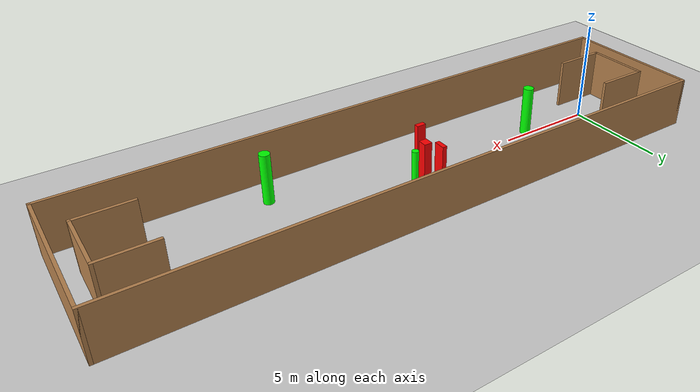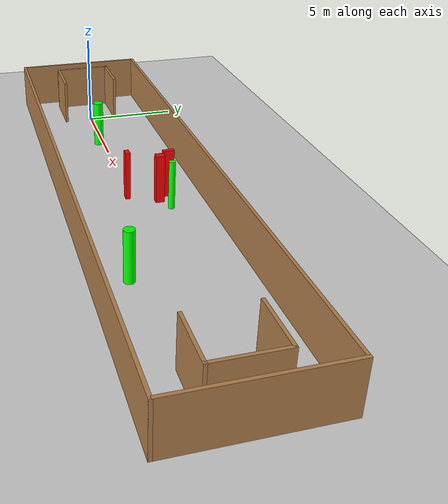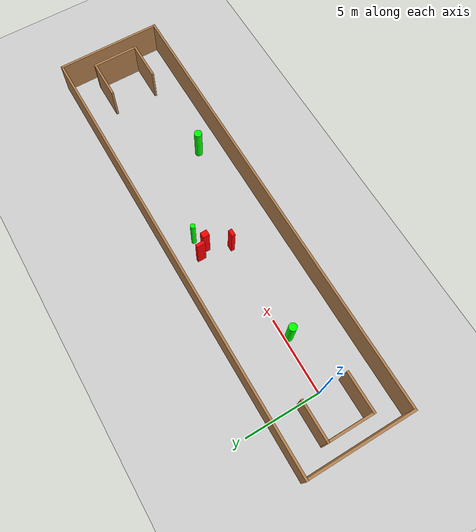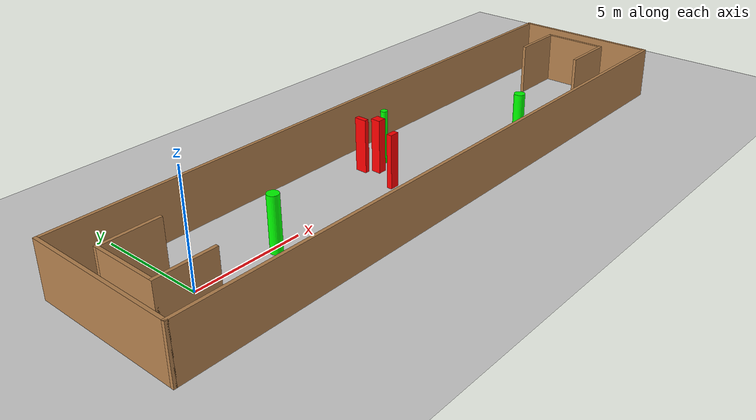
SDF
<sdf version="1.7">
 <world name="default">
  <light name="sun" type="directional">
   <pose>0 0 10 0 -0 0</pose>
   <diffuse>0.8 0.8 0.8 1</diffuse>
   <specular>0.2 0.2 0.2 1</specular>
   <attenuation>
    <range>1000</range>
    <constant>0.9</constant>
    <linear>0.01</linear>
    <quadratic>0.001</quadratic>
   </attenuation>
   <direction>-0.5 0.1 -0.9</direction>
   <spot><inner_angle>0</inner_angle><outer_angle>0</outer_angle><falloff>0</falloff></spot>
  </light>
  <model name="ground_plane">
   <static>1</static>
   <link name="link">
    <collision name="collision">
     <geometry><plane><normal>0 0 1</normal><size>100 100</size></plane></geometry>
     <surface>
      <contact><collide_bitmask>65535</collide_bitmask></contact>
      <friction><ode><mu>100</mu><mu2>50</mu2></ode></friction>
     </surface>
    </collision>
    <visual name="visual">
     <cast_shadows>0</cast_shadows>
     <geometry><plane><normal>0 0 1</normal><size>100 100</size></plane></geometry>
     <material>
      <script><uri>file://media/materials/scripts/gazebo.material</uri><name>Gazebo/Grey</name></script>
     </material>
    </visual>
   </link>
  </model>
  <gravity>0 0 -9.8</gravity>
  <magnetic_field>6e-06 2.3e-05 -4.2e-05</magnetic_field>
  <atmosphere type="adiabatic"/>
  <physics type="ode">
   <max_step_size>0.001</max_step_size>
   <real_time_factor>1</real_time_factor>
   <real_time_update_rate>1000</real_time_update_rate>
  </physics>
  <scene><ambient>0.4 0.4 0.4 1</ambient><background>0.7 0.7 0.7 1</background><shadows>1</shadows></scene>
  <spherical_coordinates>
   <surface_model>EARTH_WGS84</surface_model>
   <latitude_deg>0</latitude_deg>
   <longitude_deg>0</longitude_deg>
   <elevation>0</elevation>
   <heading_deg>0</heading_deg>
  </spherical_coordinates>
  <model name="my_base_walls">
   <link name="Wall_0">
    <collision name="Wall_0_Collision">
     <geometry><box><size>7.15 0.15 2.5</size></box></geometry>
     <pose>0 0 1.25 0 -0 0</pose>
    </collision>
    <visual name="Wall_0_Visual">
     <pose>0 0 1.25 0 -0 0</pose>
     <geometry><box><size>7.15 0.15 2.5</size></box></geometry>
     <material>
      <script><uri>file://media/materials/scripts/gazebo.material</uri><name>Gazebo/Wood</name></script>
      <ambient>1 1 1 1</ambient>
     </material>
     <meta><layer>0</layer></meta>
    </visual>
    <pose>-15 0 0 0 -0 1.5708</pose>
   </link>
   <link name="Wall_10">
    <collision name="Wall_10_Collision">
     <geometry><box><size>2.65 0.15 2.5</size></box></geometry>
     <pose>0 0 1.25 0 -0 0</pose>
    </collision>
    <visual name="Wall_10_Visual">
     <pose>0 0 1.25 0 -0 0</pose>
     <geometry><box><size>2.65 0.15 2.5</size></box></geometry>
     <material>
      <script><uri>file://media/materials/scripts/gazebo.material</uri><name>Gazebo/Wood</name></script>
      <ambient>1 1 1 1</ambient>
     </material>
     <meta><layer>0</layer></meta>
    </visual>
    <pose>-12.75 -1.5 0 0 -0 0</pose>
   </link>
   <link name="Wall_12">
    <collision name="Wall_12_Collision">
     <geometry><box><size>2.65 0.15 2.5</size></box></geometry>
     <pose>0 0 1.25 0 -0 0</pose>
    </collision>
    <visual name="Wall_12_Visual">
     <pose>0 0 1.25 0 -0 0</pose>
     <geometry><box><size>2.65 0.15 2.5</size></box></geometry>
     <material>
      <script><uri>file://media/materials/scripts/gazebo.material</uri><name>Gazebo/Wood</name></script>
      <ambient>1 1 1 1</ambient>
     </material>
     <meta><layer>0</layer></meta>
    </visual>
    <pose>-12.75 1.5 0 0 -0 0</pose>
   </link>
   <link name="Wall_14">
    <collision name="Wall_14_Collision">
     <geometry><box><size>3.15 0.15 2.5</size></box></geometry>
     <pose>0 0 1.25 0 -0 0</pose>
    </collision>
    <visual name="Wall_14_Visual">
     <pose>0 0 1.25 0 -0 0</pose>
     <geometry><box><size>3.15 0.15 2.5</size></box></geometry>
     <material>
      <script><uri>file://media/materials/scripts/gazebo.material</uri><name>Gazebo/Wood</name></script>
      <ambient>1 1 1 1</ambient>
     </material>
     <meta><layer>0</layer></meta>
    </visual>
    <pose>14 0 0 0 -0 -1.5708</pose>
   </link>
   <link name="Wall_15">
    <collision name="Wall_15_Collision">
     <geometry><box><size>2.65 0.15 2.5</size></box></geometry>
     <pose>0 0 1.25 0 -0 0</pose>
    </collision>
    <visual name="Wall_15_Visual">
     <pose>0 0 1.25 0 -0 0</pose>
     <geometry><box><size>2.65 0.15 2.5</size></box></geometry>
     <material>
      <script><uri>file://media/materials/scripts/gazebo.material</uri><name>Gazebo/Wood</name></script>
      <ambient>1 1 1 1</ambient>
     </material>
     <meta><layer>0</layer></meta>
    </visual>
    <pose>12.75 -1.5 0 0 -0 3.14159</pose>
   </link>
   <link name="Wall_17">
    <collision name="Wall_17_Collision">
     <geometry><box><size>2.65 0.15 2.5</size></box></geometry>
     <pose>0 0 1.25 0 -0 0</pose>
    </collision>
    <visual name="Wall_17_Visual">
     <pose>0 0 1.25 0 -0 0</pose>
     <geometry><box><size>2.65 0.15 2.5</size></box></geometry>
     <material>
      <script><uri>file://media/materials/scripts/gazebo.material</uri><name>Gazebo/Wood</name></script>
      <ambient>1 1 1 1</ambient>
     </material>
     <meta><layer>0</layer></meta>
    </visual>
    <pose>12.75 1.5 0 0 -0 3.14159</pose>
   </link>
   <link name="Wall_2">
    <collision name="Wall_2_Collision">
     <geometry><box><size>30.15 0.15 2.5</size></box></geometry>
     <pose>0 0 1.25 0 -0 0</pose>
    </collision>
    <visual name="Wall_2_Visual">
     <pose>0 0 1.25 0 -0 0</pose>
     <geometry><box><size>30.15 0.15 2.5</size></box></geometry>
     <material>
      <script><uri>file://media/materials/scripts/gazebo.material</uri><name>Gazebo/Wood</name></script>
      <ambient>1 1 1 1</ambient>
     </material>
     <meta><layer>0</layer></meta>
    </visual>
    <pose>-0 -3.5 0 0 -0 0</pose>
   </link>
   <link name="Wall_4">
    <collision name="Wall_4_Collision">
     <geometry><box><size>30.15 0.15 2.5</size></box></geometry>
     <pose>0 0 1.25 0 -0 0</pose>
    </collision>
    <visual name="Wall_4_Visual">
     <pose>0 0 1.25 0 -0 0</pose>
     <geometry><box><size>30.15 0.15 2.5</size></box></geometry>
     <material>
      <script><uri>file://media/materials/scripts/gazebo.material</uri><name>Gazebo/Wood</name></script>
      <ambient>1 1 1 1</ambient>
     </material>
     <meta><layer>0</layer></meta>
    </visual>
    <pose>-0 3.5 0 0 -0 0</pose>
   </link>
   <link name="Wall_6">
    <collision name="Wall_6_Collision">
     <geometry><box><size>7.15 0.15 2.5</size></box></geometry>
     <pose>0 0 1.25 0 -0 0</pose>
    </collision>
    <visual name="Wall_6_Visual">
     <pose>0 0 1.25 0 -0 0</pose>
     <geometry><box><size>7.15 0.15 2.5</size></box></geometry>
     <material>
      <script><uri>file://media/materials/scripts/gazebo.material</uri><name>Gazebo/Wood</name></script>
      <ambient>1 1 1 1</ambient>
     </material>
     <meta><layer>0</layer></meta>
    </visual>
    <pose>15 0 0 0 -0 -1.5708</pose>
   </link>
   <link name="Wall_9">
    <collision name="Wall_9_Collision">
     <geometry><box><size>3.15 0.15 2.5</size></box></geometry>
     <pose>0 0 1.25 0 -0 0</pose>
    </collision>
    <visual name="Wall_9_Visual">
     <pose>0 0 1.25 0 -0 0</pose>
     <geometry><box><size>3.15 0.15 2.5</size></box></geometry>
     <material>
      <script><uri>file://media/materials/scripts/gazebo.material</uri><name>Gazebo/Wood</name></script>
      <ambient>1 1 1 1</ambient>
     </material>
     <meta><layer>0</layer></meta>
    </visual>
    <pose>-14 0 0 0 -0 -1.5708</pose>
   </link>
   <static>1</static>
   <pose>11.5 0 0 0 -0 0</pose>
  </model>
  <model name="cylinder1">
   <static>1</static>
   <link name="link">
    <inertial>
     <mass>1</mass>
     <inertia><ixx>0.5</ixx><ixy>0</ixy><ixz>0</ixz><iyy>0.5</iyy><iyz>0</iyz><izz>1</izz></inertia>
    </inertial>
    <collision name="collision">
     <geometry><cylinder><radius>0.26065809392479394</radius><length>2.5</length></cylinder></geometry>
    </collision>
    <visual name="visual">
     <geometry><cylinder><radius>0.26065809392479394</radius><length>2.5</length></cylinder></geometry>
     <material>
      <ambient>0 1 0 1</ambient>
      <diffuse>0 1 0 1</diffuse>
      <specular>0.1 0.1 0.1 1</specular>
      <emissive>0 0 0 0</emissive>
     </material>
    </visual>
   </link>
   <pose>3.6556493434728807 -0.2513632791598792 1.25 0 0 0</pose>
  </model>
  <model name="cylinder2">
   <static>1</static>
   <link name="link">
    <inertial>
     <mass>1</mass>
     <inertia><ixx>0.5</ixx><ixy>0</ixy><ixz>0</ixz><iyy>0.5</iyy><iyz>0</iyz><izz>1</izz></inertia>
    </inertial>
    <collision name="collision">
     <geometry><cylinder><radius>0.1586605560229533</radius><length>2.5</length></cylinder></geometry>
    </collision>
    <visual name="visual">
     <geometry><cylinder><radius>0.1586605560229533</radius><length>2.5</length></cylinder></geometry>
     <material>
      <ambient>0 1 0 1</ambient>
      <diffuse>0 1 0 1</diffuse>
      <specular>0.1 0.1 0.1 1</specular>
      <emissive>0 0 0 0</emissive>
     </material>
    </visual>
   </link>
   <pose>11.923018432427188 1.6103977716565456 1.25 0 0 0</pose>
  </model>
  <model name="cylinder3">
   <static>1</static>
   <link name="link">
    <inertial>
     <mass>1</mass>
     <inertia><ixx>0.5</ixx><ixy>0</ixy><ixz>0</ixz><iyy>0.5</iyy><iyz>0</iyz><izz>1</izz></inertia>
    </inertial>
    <collision name="collision">
     <geometry><cylinder><radius>0.2559791996299907</radius><length>2.5</length></cylinder></geometry>
    </collision>
    <visual name="visual">
     <geometry><cylinder><radius>0.2559791996299907</radius><length>2.5</length></cylinder></geometry>
     <material>
      <ambient>0 1 0 1</ambient>
      <diffuse>0 1 0 1</diffuse>
      <specular>0.1 0.1 0.1 1</specular>
      <emissive>0 0 0 0</emissive>
     </material>
    </visual>
   </link>
   <pose>17.394127308337726 -1.8531126029629252 1.25 0 0 0</pose>
  </model>
  <model name="box1">
   <static>1</static>
   <link name="link">
    <inertial>
     <mass>1</mass>
     <inertia><ixx>0.083</ixx><ixy>0</ixy><ixz>0</ixz><iyy>0.083</iyy><iyz>0</iyz><izz>0.083</izz></inertia>
    </inertial>
    <collision name="collision">
     <geometry><box><size>0.3879251791719624 0.43691144477222754 2.5</size></box></geometry>
    </collision>
    <visual name="visual">
     <geometry><box><size>0.3879251791719624 0.43691144477222754 2.5</size></box></geometry>
     <material>
      <ambient>1 0 0 1</ambient>
      <diffuse>1 0 0 1</diffuse>
      <specular>0.1 0.1 0.1 1</specular>
      <emissive>0 0 0 0</emissive>
     </material>
    </visual>
    <sensor name="my_contact" type="contact">
     <contact><collision>box_collision</collision><topic>__default_topic__</topic></contact>
    </sensor>
   </link>
   <pose>11.105777239632154 1.2291391560072071 1.25 0 0 0</pose>
  </model>
  <model name="box2">
   <static>1</static>
   <link name="link">
    <inertial>
     <mass>1</mass>
     <inertia><ixx>0.083</ixx><ixy>0</ixy><ixz>0</ixz><iyy>0.083</iyy><iyz>0</iyz><izz>0.083</izz></inertia>
    </inertial>
    <collision name="collision">
     <geometry><box><size>0.21745833201852904 0.5627156735170536 2.5</size></box></geometry>
    </collision>
    <visual name="visual">
     <geometry><box><size>0.21745833201852904 0.5627156735170536 2.5</size></box></geometry>
     <material>
      <ambient>1 0 0 1</ambient>
      <diffuse>1 0 0 1</diffuse>
      <specular>0.1 0.1 0.1 1</specular>
      <emissive>0 0 0 0</emissive>
     </material>
    </visual>
    <sensor name="my_contact" type="contact">
     <contact><collision>box_collision</collision><topic>__default_topic__</topic></contact>
    </sensor>
   </link>
   <pose>10.67046523313705 1.7831585378569264 1.25 0 0 0</pose>
  </model>
  <model name="box3">
   <static>1</static>
   <link name="link">
    <inertial>
     <mass>1</mass>
     <inertia><ixx>0.083</ixx><ixy>0</ixy><ixz>0</ixz><iyy>0.083</iyy><iyz>0</iyz><izz>0.083</izz></inertia>
    </inertial>
    <collision name="collision">
     <geometry><box><size>0.4421205447478431 0.24124303969506927 2.5</size></box></geometry>
    </collision>
    <visual name="visual">
     <geometry><box><size>0.4421205447478431 0.24124303969506927 2.5</size></box></geometry>
     <material>
      <ambient>1 0 0 1</ambient>
      <diffuse>1 0 0 1</diffuse>
      <specular>0.1 0.1 0.1 1</specular>
      <emissive>0 0 0 0</emissive>
     </material>
    </visual>
    <sensor name="my_contact" type="contact">
     <contact><collision>box_collision</collision><topic>__default_topic__</topic></contact>
    </sensor>
   </link>
   <pose>10.362708400553649 -0.21397386467583823 1.25 0 0 0</pose>
  </model>
 </world>
</sdf>
